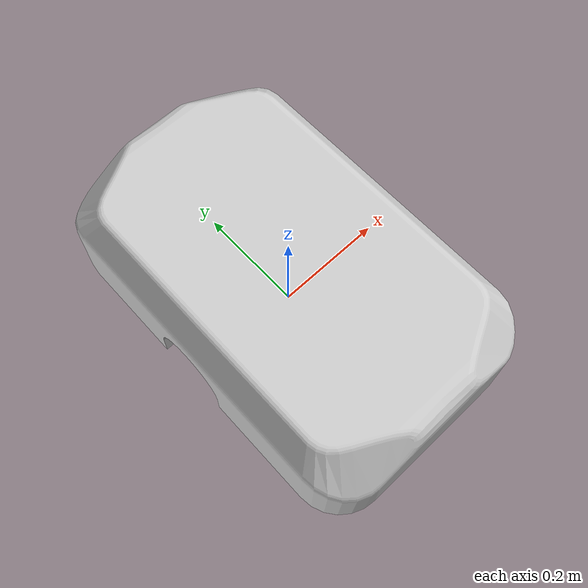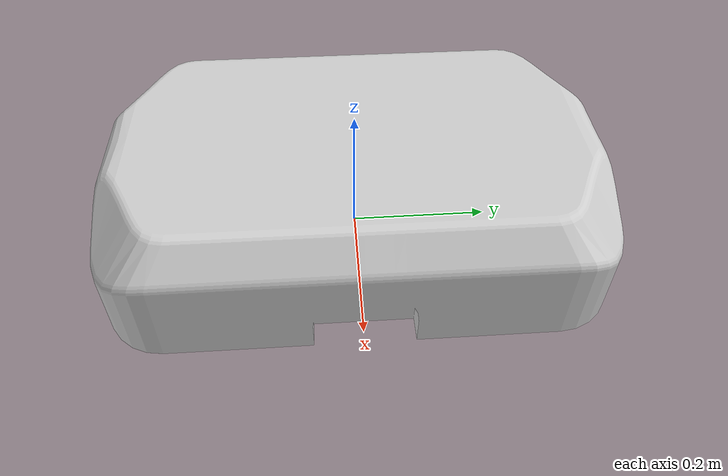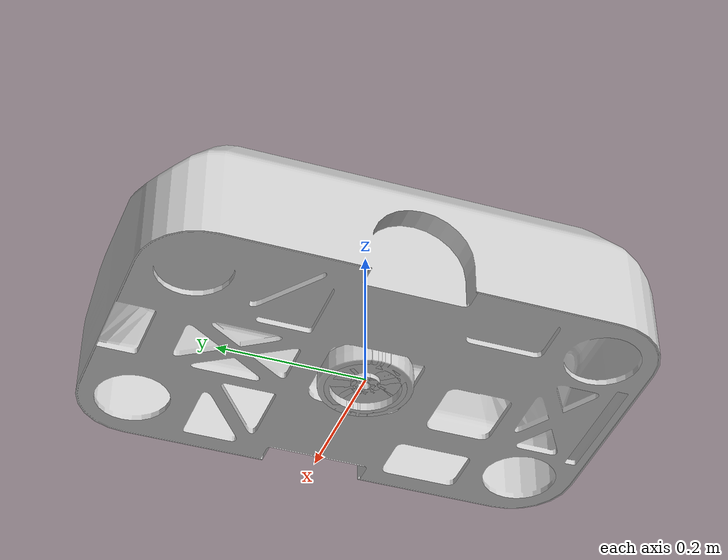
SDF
<?xml version="1.0"?>
<sdf version="1.10">
<model name="amr100" canonical_link="root">

  <joint name="left_wheel_link_joint" type="revolute">
    <pose relative_to="root">0.20749 0.00107 0.04029 -0.00000 1.57080 0.00000</pose>
    <parent>root</parent>
    <child>left_wheel_link</child>
    <axis>
      <limit>
        <lower>-3.14000</lower>
        <upper>3.14000</upper>
        <effort>0.00000</effort>
        <velocity>0.00000</velocity>
      </limit>
      <xyz>0.00000 0.00000 1.00000</xyz>
    </axis>
    <axis2/>
  </joint>

  <joint name="right_wheel_link_joint" type="revolute">
    <pose relative_to="root">-0.20750 0.00107 0.04015 0.00000 -1.57080 0.00000</pose>
    <parent>root</parent>
    <child>right_wheel_link</child>
    <axis>
      <limit>
        <lower>-3.14000</lower>
        <upper>3.14000</upper>
        <effort>0.00000</effort>
        <velocity>0.00000</velocity>
      </limit>
      <xyz>0.00000 0.00000 1.00000</xyz>
    </axis>
    <axis2/>
  </joint>

  <link name="root">
    <inertial>
      <inertia>
        <ixx>1.21129</ixx>
        <ixy>-0.00014</ixy>
        <ixz>0.00051</ixz>
        <iyy>0.51918</iyy>
        <iyz>-0.00435</iyz>
        <izz>1.52135</izz>
      </inertia>
      <pose relative_to="root">-0.00034 0.00016 0.07460 0.00000 0.00000 0.00000</pose>
      <mass>30.00000</mass>
    </inertial>
    <visual name="Body">
      <material>
        <diffuse>0.80000 0.80000 0.80000 1.00000</diffuse>
        <specular>0.80000 0.80000 0.80000 1.00000</specular>
        <emissive>1.00000 1.00000 1.00000 1.00000</emissive>
      </material>
      <pose relative_to="root">0.00000 0.00000 -0.00000 0.00000 0.00000 0.00000</pose>
      <geometry>
        <mesh>
          <uri>../meshes/obj/Cube.012.obj</uri>
          <scale>1.00000 1.00000 1.00000</scale>
        </mesh>
      </geometry>
    </visual>
  </link>

  <link name="left_wheel_link">
    <collision name="Drive_wheel_L_collision">
      <pose relative_to="left_wheel_link">0.00000 -0.00007 0.00000 -0.00000 0.00000 -0.59116</pose>
      <geometry>
        <cylinder>
          <radius>0.06250</radius>
          <length>0.03000</length>
        </cylinder>
      </geometry>
      <surface>
        <contact/>
      </surface>
    </collision>
    <inertial>
      <inertia>
        <ixx>0.00055</ixx>
        <ixy>0.00000</ixy>
        <ixz>-0.00000</ixz>
        <iyy>0.00029</iyy>
        <iyz>-0.00000</iyz>
        <izz>0.00029</izz>
      </inertia>
      <pose relative_to="left_wheel_link">0.00000 -0.00008 0.00000 0.00000 0.00000 0.00000</pose>
      <mass>0.30000</mass>
    </inertial>
    <visual name="Drive_wheel_L">
      <material>
        <diffuse>0.80000 0.80000 0.80000 1.00000</diffuse>
        <specular>0.80000 0.80000 0.80000 1.00000</specular>
        <emissive>1.00000 1.00000 1.00000 1.00000</emissive>
      </material>
      <pose relative_to="left_wheel_link">0.00000 0.00000 0.00000 -0.00000 0.00000 -0.59116</pose>
      <geometry>
        <mesh>
          <uri>../meshes/obj/Cylinder.004.obj</uri>
          <scale>1.00000 1.00000 1.00000</scale>
        </mesh>
      </geometry>
    </visual>
  </link>

  <link name="right_wheel_link">
    <collision name="Drive_wheel_R_collision">
      <pose relative_to="right_wheel_link">0.00000 0.00000 0.00000 0.00000 0.00000 0.00000</pose>
      <geometry>
        <cylinder>
          <radius>0.06250</radius>
          <length>0.03000</length>
        </cylinder>
      </geometry>
      <surface>
        <contact/>
      </surface>
    </collision>
    <inertial>
      <inertia>
        <ixx>0.00055</ixx>
        <ixy>0.00000</ixy>
        <ixz>-0.00000</ixz>
        <iyy>0.00029</iyy>
        <iyz>-0.00000</iyz>
        <izz>0.00029</izz>
      </inertia>
      <pose relative_to="right_wheel_link">0.00000 -0.00001 0.00000 0.00000 0.00000 0.00000</pose>
      <mass>0.30000</mass>
    </inertial>
    <visual name="Drive_wheel_R">
      <material>
        <diffuse>0.80000 0.80000 0.80000 1.00000</diffuse>
        <specular>0.80000 0.80000 0.80000 1.00000</specular>
        <emissive>1.00000 1.00000 1.00000 1.00000</emissive>
      </material>
      <pose relative_to="right_wheel_link">0.00000 0.00000 0.00000 3.14159 -0.00000 -2.55043</pose>
      <geometry>
        <mesh>
          <uri>../meshes/obj/Cylinder.005.obj</uri>
          <scale>1.00000 1.00000 1.00000</scale>
        </mesh>
      </geometry>
    </visual>
  </link>

  <plugin filename="gz-sim-joint-controller-system" name="gz::sim::systems::JointController">
    <joint_name>left_wheel_link_joint</joint_name>
    <use_force_commands>0</use_force_commands>
    <p_gain>20.00000</p_gain>
    <i_gain>0.00000</i_gain>
    <d_gain>0.00000</d_gain>
  </plugin>

  <plugin filename="gz-sim-joint-controller-system" name="gz::sim::systems::JointController">
    <joint_name>right_wheel_link_joint</joint_name>
    <use_force_commands>0</use_force_commands>
    <p_gain>20.00000</p_gain>
    <i_gain>0.00000</i_gain>
    <d_gain>0.00000</d_gain>
  </plugin>

</model>
</sdf>
